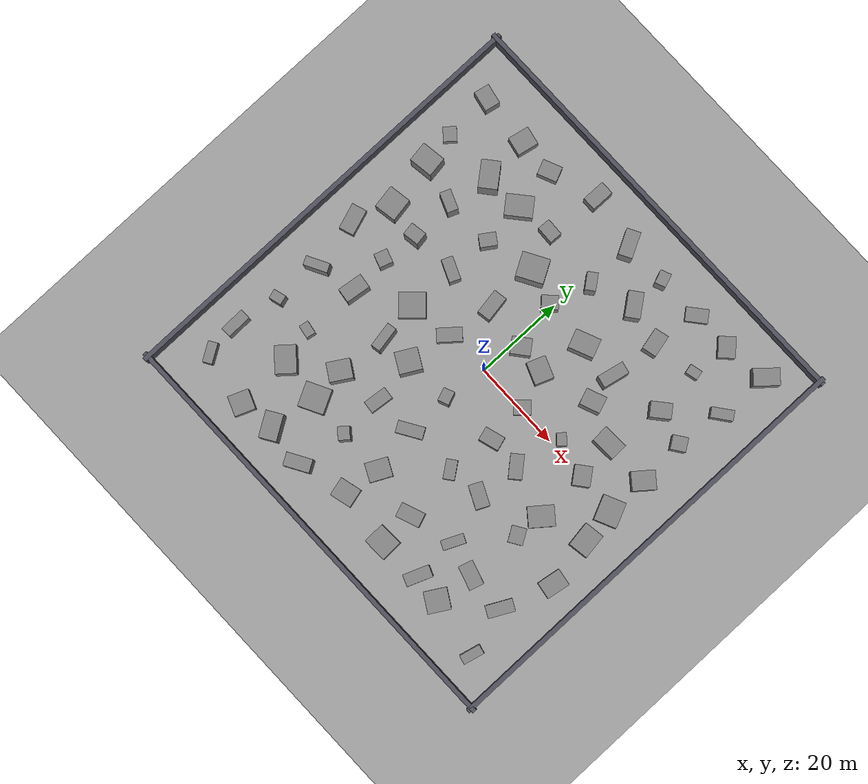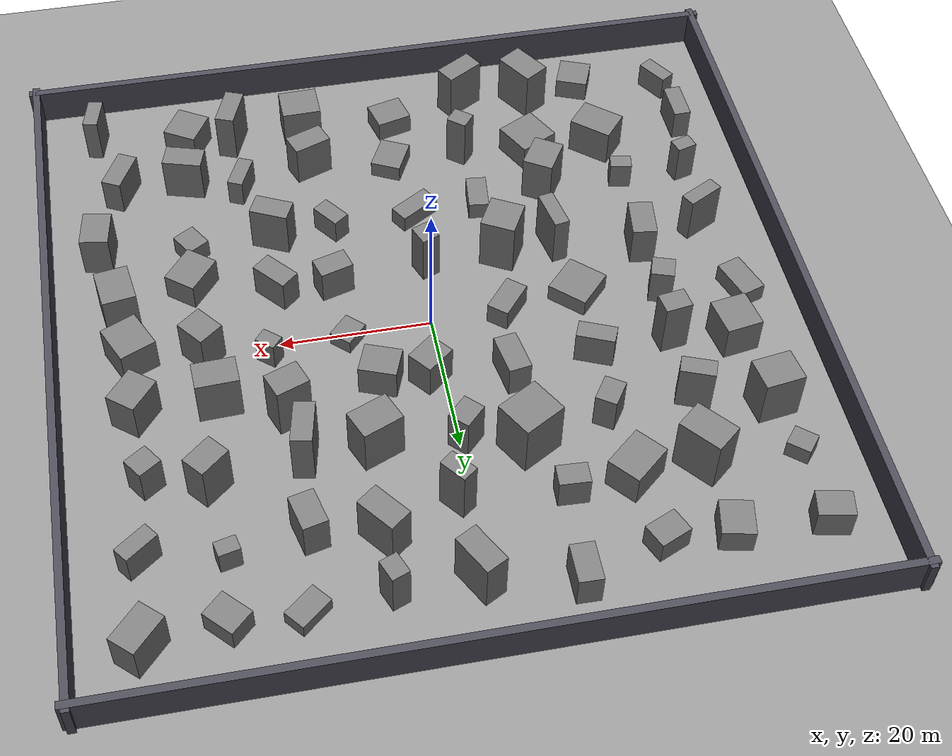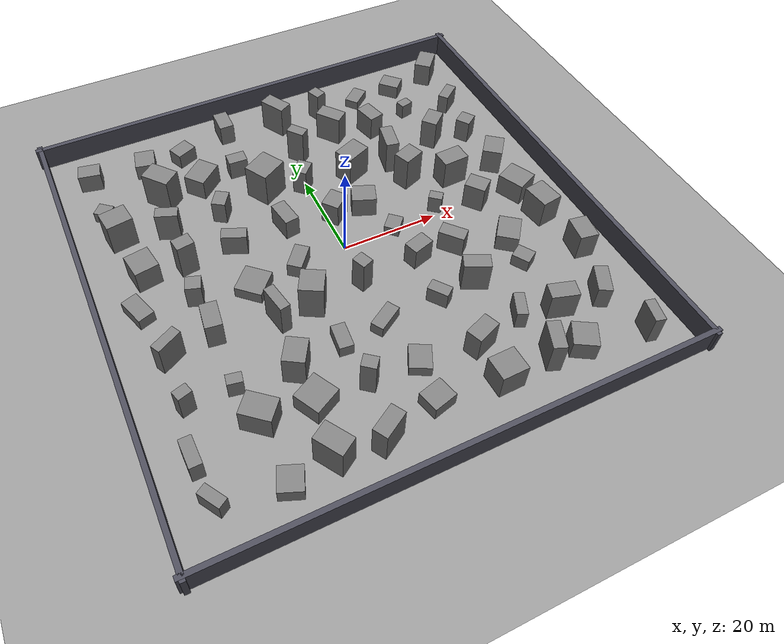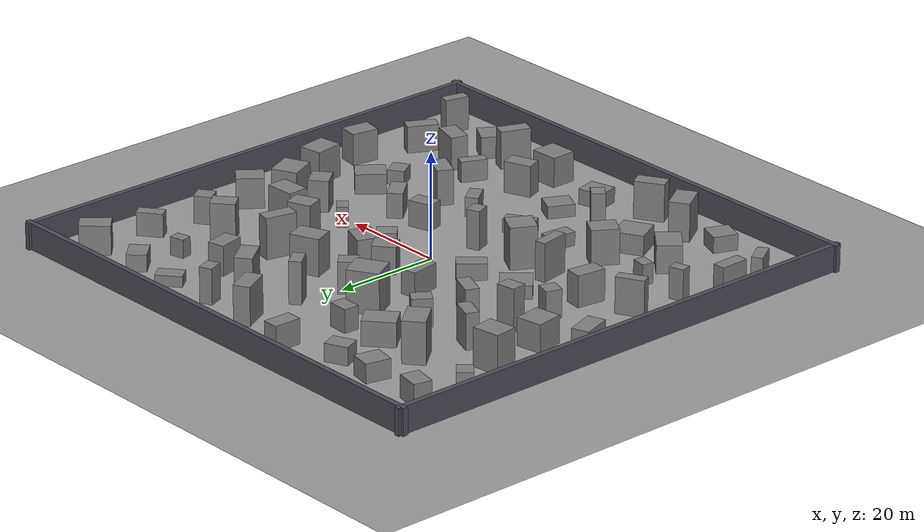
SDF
<?xml version="1.0"?>
<sdf version="1.8">
  <world name="obstacle_world">
    <physics name="default_physics" type="ode">
      <max_step_size>0.001</max_step_size>
      <real_time_factor>1.0</real_time_factor>
      <real_time_update_rate>1000</real_time_update_rate>
    </physics>
    <gravity>0 0 -9.81</gravity>
    <plugin filename="ignition-gazebo-physics-system" name="ignition::gazebo::systems::Physics"/>
    <plugin filename="ignition-gazebo-user-commands-system" name="ignition::gazebo::systems::UserCommands"/>
    <plugin filename="ignition-gazebo-scene-broadcaster-system" name="ignition::gazebo::systems::SceneBroadcaster"/>
    <plugin filename="ignition-gazebo-sensors-system" name="ignition::gazebo::systems::Sensors">
      <render_engine>ogre2</render_engine>
    </plugin>
    <plugin filename="ignition-gazebo-contact-system" name="ignition::gazebo::systems::Contact"/>

    <light type="directional" name="sun">
      <cast_shadows>true</cast_shadows>
      <pose>0 0 20 0 0 0</pose>
      <diffuse>0.9 0.9 0.9 1</diffuse>
      <specular>0.3 0.3 0.3 1</specular>
      <attenuation>
        <range>1000</range>
        <constant>0.9</constant>
        <linear>0.01</linear>
        <quadratic>0.001</quadratic>
      </attenuation>
      <direction>-0.5 0.1 -0.9</direction>
    </light>

    <model name="ground_plane">
      <static>true</static>
      <link name="link">
        <collision name="collision">
          <geometry>
            <plane>
              <normal>0 0 1</normal>
              <size>100 100</size>
            </plane>
          </geometry>
          <surface>
            <friction>
              <ode>
                <mu>2.0</mu>
                <mu2>2.0</mu2>
              </ode>
            </friction>
          </surface>
        </collision>
        <visual name="visual">
          <geometry>
            <plane>
              <normal>0 0 1</normal>
              <size>100 100</size>
            </plane>
          </geometry>
          <material>
            <ambient>0.6 0.6 0.6 1</ambient>
            <diffuse>0.6 0.6 0.6 1</diffuse>
          </material>
        </visual>
      </link>
    </model>

    <!-- Complex obstacles -->

    <model name="building_block_1">
      <pose>-41.10715704740471 -39.05411514334395 1.8250879551073578 0 0 2.125851439739076</pose>
      <static>true</static>
      <link name="link">
        <collision name="collision">
          <geometry><box><size>4.5577071938315346 2.1000430208906677 3.6501759102147155</size></box></geometry>
        </collision>
        <visual name="visual">
          <geometry><box><size>4.5577071938315346 2.1000430208906677 3.6501759102147155</size></box></geometry>
          <material>
            <ambient>0.4 0.4 0.4 1</ambient>
            <diffuse>0.5 0.5 0.5 1</diffuse>
          </material>
        </visual>
      </link>
    </model>

    <model name="building_block_2">
      <pose>-41.88081112224772 -31.125448100785587 2.265765459055811 0 0 1.587573637576713</pose>
      <static>true</static>
      <link name="link">
        <collision name="collision">
          <geometry><box><size>5.568718270819382 2.3477553305176646 4.531530918111622</size></box></geometry>
        </collision>
        <visual name="visual">
          <geometry><box><size>5.568718270819382 2.3477553305176646 4.531530918111622</size></box></geometry>
          <material>
            <ambient>0.4 0.4 0.4 1</ambient>
            <diffuse>0.5 0.5 0.5 1</diffuse>
          </material>
        </visual>
      </link>
    </model>

    <model name="building_block_3">
      <pose>-39.82023407758713 -21.118237511837215 2.94965331333857 0 0 1.8511781458961674</pose>
      <static>true</static>
      <link name="link">
        <collision name="collision">
          <geometry><box><size>2.1061438787354545 2.795350602746594 5.89930662667714</size></box></geometry>
        </collision>
        <visual name="visual">
          <geometry><box><size>2.1061438787354545 2.795350602746594 5.89930662667714</size></box></geometry>
          <material>
            <ambient>0.4 0.4 0.4 1</ambient>
            <diffuse>0.5 0.5 0.5 1</diffuse>
          </material>
        </visual>
      </link>
    </model>

    <model name="building_block_4">
      <pose>-39.207442420047094 -10.638997933928032 3.4174577554984236 0 0 0.4884388486587118</pose>
      <static>true</static>
      <link name="link">
        <collision name="collision">
          <geometry><box><size>5.237721826711306 2.025995038712244 6.834915510996847</size></box></geometry>
        </collision>
        <visual name="visual">
          <geometry><box><size>5.237721826711306 2.025995038712244 6.834915510996847</size></box></geometry>
          <material>
            <ambient>0.4 0.4 0.4 1</ambient>
            <diffuse>0.5 0.5 0.5 1</diffuse>
          </material>
        </visual>
      </link>
    </model>

    <model name="building_block_5">
      <pose>-41.61313449266614 1.3899774653898391 1.2782375301404438 0 0 1.8966053275390884</pose>
      <static>true</static>
      <link name="link">
        <collision name="collision">
          <geometry><box><size>5.828852288827125 3.346378180450507 2.5564750602808877</size></box></geometry>
        </collision>
        <visual name="visual">
          <geometry><box><size>5.828852288827125 3.346378180450507 2.5564750602808877</size></box></geometry>
          <material>
            <ambient>0.4 0.4 0.4 1</ambient>
            <diffuse>0.5 0.5 0.5 1</diffuse>
          </material>
        </visual>
      </link>
    </model>

    <model name="building_block_6">
      <pose>-38.10753694408252 9.514137508833414 2.6086842743641023 0 0 1.7342356431448427</pose>
      <static>true</static>
      <link name="link">
        <collision name="collision">
          <geometry><box><size>5.22851309309752 4.918927146775271 5.217368548728205</size></box></geometry>
        </collision>
        <visual name="visual">
          <geometry><box><size>5.22851309309752 4.918927146775271 5.217368548728205</size></box></geometry>
          <material>
            <ambient>0.4 0.4 0.4 1</ambient>
            <diffuse>0.5 0.5 0.5 1</diffuse>
          </material>
        </visual>
      </link>
    </model>

    <model name="building_block_7">
      <pose>-39.69059141897295 20.818287344859694 3.5851207009323316 0 0 0.14395730125426287</pose>
      <static>true</static>
      <link name="link">
        <collision name="collision">
          <geometry><box><size>5.317618657011979 4.474079009456984 7.170241401864663</size></box></geometry>
        </collision>
        <visual name="visual">
          <geometry><box><size>5.317618657011979 4.474079009456984 7.170241401864663</size></box></geometry>
          <material>
            <ambient>0.4 0.4 0.4 1</ambient>
            <diffuse>0.5 0.5 0.5 1</diffuse>
          </material>
        </visual>
      </link>
    </model>

    <model name="building_block_8">
      <pose>-41.06883645455588 28.404005717638917 1.2393759307708825 0 0 0.8732540741703544</pose>
      <static>true</static>
      <link name="link">
        <collision name="collision">
          <geometry><box><size>2.9115931026061874 3.1575518544084287 2.478751861541765</size></box></geometry>
        </collision>
        <visual name="visual">
          <geometry><box><size>2.9115931026061874 3.1575518544084287 2.478751861541765</size></box></geometry>
          <material>
            <ambient>0.4 0.4 0.4 1</ambient>
            <diffuse>0.5 0.5 0.5 1</diffuse>
          </material>
        </visual>
      </link>
    </model>

    <model name="building_block_9">
      <pose>-41.16197187691405 39.067911288196456 2.110542901350648 0 0 2.9425003872988</pose>
      <static>true</static>
      <link name="link">
        <collision name="collision">
          <geometry><box><size>4.542737777057601 3.459328715880337 4.221085802701296</size></box></geometry>
        </collision>
        <visual name="visual">
          <geometry><box><size>4.542737777057601 3.459328715880337 4.221085802701296</size></box></geometry>
          <material>
            <ambient>0.4 0.4 0.4 1</ambient>
            <diffuse>0.5 0.5 0.5 1</diffuse>
          </material>
        </visual>
      </link>
    </model>

    <model name="building_block_10">
      <pose>-29.083492808198603 -41.346390024952285 1.513415944594291 0 0 1.1920592702816506</pose>
      <static>true</static>
      <link name="link">
        <collision name="collision">
          <geometry><box><size>4.592141540986374 4.436524022667953 3.026831889188582</size></box></geometry>
        </collision>
        <visual name="visual">
          <geometry><box><size>4.592141540986374 4.436524022667953 3.026831889188582</size></box></geometry>
          <material>
            <ambient>0.4 0.4 0.4 1</ambient>
            <diffuse>0.5 0.5 0.5 1</diffuse>
          </material>
        </visual>
      </link>
    </model>

    <model name="building_block_11">
      <pose>-29.2615429960405 -28.628592319240763 2.6708492313239387 0 0 2.437803722122528</pose>
      <static>true</static>
      <link name="link">
        <collision name="collision">
          <geometry><box><size>5.958093402546381 4.559999039416372 5.341698462647877</size></box></geometry>
        </collision>
        <visual name="visual">
          <geometry><box><size>5.958093402546381 4.559999039416372 5.341698462647877</size></box></geometry>
          <material>
            <ambient>0.4 0.4 0.4 1</ambient>
            <diffuse>0.5 0.5 0.5 1</diffuse>
          </material>
        </visual>
      </link>
    </model>

    <model name="building_block_12">
      <pose>-30.92903649609719 -21.156068625654694 1.9463591441772459 0 0 2.9621508675835737</pose>
      <static>true</static>
      <link name="link">
        <collision name="collision">
          <geometry><box><size>2.9161922878564175 2.128400975616151 3.8927182883544917</size></box></geometry>
        </collision>
        <visual name="visual">
          <geometry><box><size>2.9161922878564175 2.128400975616151 3.8927182883544917</size></box></geometry>
          <material>
            <ambient>0.4 0.4 0.4 1</ambient>
            <diffuse>0.5 0.5 0.5 1</diffuse>
          </material>
        </visual>
      </link>
    </model>

    <model name="building_block_13">
      <pose>-30.417472395757343 -8.341809641037827 2.9663159958846403 0 0 1.4414830949033135</pose>
      <static>true</static>
      <link name="link">
        <collision name="collision">
          <geometry><box><size>5.505470505890676 3.2587115231939117 5.932631991769281</size></box></geometry>
        </collision>
        <visual name="visual">
          <geometry><box><size>5.505470505890676 3.2587115231939117 5.932631991769281</size></box></geometry>
          <material>
            <ambient>0.4 0.4 0.4 1</ambient>
            <diffuse>0.5 0.5 0.5 1</diffuse>
          </material>
        </visual>
      </link>
    </model>

    <model name="building_block_14">
      <pose>-30.94903356590826 0.3383439608941621 2.6841044024894525 0 0 2.8205105888371818</pose>
      <static>true</static>
      <link name="link">
        <collision name="collision">
          <geometry><box><size>3.05952066599221 2.986510030775934 5.368208804978905</size></box></geometry>
        </collision>
        <visual name="visual">
          <geometry><box><size>3.05952066599221 2.986510030775934 5.368208804978905</size></box></geometry>
          <material>
            <ambient>0.4 0.4 0.4 1</ambient>
            <diffuse>0.5 0.5 0.5 1</diffuse>
          </material>
        </visual>
      </link>
    </model>

    <model name="building_block_15">
      <pose>-29.96189482529414 8.363637648695175 3.9926128194853305 0 0 0.14801609339680366</pose>
      <static>true</static>
      <link name="link">
        <collision name="collision">
          <geometry><box><size>3.597602020561589 2.8772830366291333 7.985225638970661</size></box></geometry>
        </collision>
        <visual name="visual">
          <geometry><box><size>3.597602020561589 2.8772830366291333 7.985225638970661</size></box></geometry>
          <material>
            <ambient>0.4 0.4 0.4 1</ambient>
            <diffuse>0.5 0.5 0.5 1</diffuse>
          </material>
        </visual>
      </link>
    </model>

    <model name="building_block_16">
      <pose>-30.311360132801262 18.254110824607828 3.3762380930888924 0 0 1.1988569885602853</pose>
      <static>true</static>
      <link name="link">
        <collision name="collision">
          <geometry><box><size>2.4385965214026366 4.50978416681236 6.752476186177785</size></box></geometry>
        </collision>
        <visual name="visual">
          <geometry><box><size>2.4385965214026366 4.50978416681236 6.752476186177785</size></box></geometry>
          <material>
            <ambient>0.4 0.4 0.4 1</ambient>
            <diffuse>0.5 0.5 0.5 1</diffuse>
          </material>
        </visual>
      </link>
    </model>

    <model name="building_block_17">
      <pose>-28.556881191062008 28.04592408777128 3.9132351328408546 0 0 2.2641475955200514</pose>
      <static>true</static>
      <link name="link">
        <collision name="collision">
          <geometry><box><size>5.984485520960387 4.1164573803965485 7.826470265681709</size></box></geometry>
        </collision>
        <visual name="visual">
          <geometry><box><size>5.984485520960387 4.1164573803965485 7.826470265681709</size></box></geometry>
          <material>
            <ambient>0.4 0.4 0.4 1</ambient>
            <diffuse>0.5 0.5 0.5 1</diffuse>
          </material>
        </visual>
      </link>
    </model>

    <model name="building_block_18">
      <pose>-29.436152805680766 38.44620869438351 1.8004755698576282 0 0 1.3658150349769933</pose>
      <static>true</static>
      <link name="link">
        <collision name="collision">
          <geometry><box><size>4.7268414761063 4.147881321635181 3.6009511397152565</size></box></geometry>
        </collision>
        <visual name="visual">
          <geometry><box><size>4.7268414761063 4.147881321635181 3.6009511397152565</size></box></geometry>
          <material>
            <ambient>0.4 0.4 0.4 1</ambient>
            <diffuse>0.5 0.5 0.5 1</diffuse>
          </material>
        </visual>
      </link>
    </model>

    <model name="building_block_19">
      <pose>-20.946443796995638 -39.99765554779881 3.627558821134582 0 0 0.5612348826854078</pose>
      <static>true</static>
      <link name="link">
        <collision name="collision">
          <geometry><box><size>3.8148948253168258 5.81526371008432 7.255117642269164</size></box></geometry>
        </collision>
        <visual name="visual">
          <geometry><box><size>3.8148948253168258 5.81526371008432 7.255117642269164</size></box></geometry>
          <material>
            <ambient>0.4 0.4 0.4 1</ambient>
            <diffuse>0.5 0.5 0.5 1</diffuse>
          </material>
        </visual>
      </link>
    </model>

    <model name="building_block_20">
      <pose>-19.44420202053598 -29.56411915424731 1.8953343743458988 0 0 0.4801445621486778</pose>
      <static>true</static>
      <link name="link">
        <collision name="collision">
          <geometry><box><size>5.650511357379282 5.482074279347067 3.7906687486917976</size></box></geometry>
        </collision>
        <visual name="visual">
          <geometry><box><size>5.650511357379282 5.482074279347067 3.7906687486917976</size></box></geometry>
          <material>
            <ambient>0.4 0.4 0.4 1</ambient>
            <diffuse>0.5 0.5 0.5 1</diffuse>
          </material>
        </visual>
      </link>
    </model>

    <model name="building_block_21">
      <pose>-19.87858531121929 -21.997712415488227 3.3358794358916746 0 0 1.0183362530801805</pose>
      <static>true</static>
      <link name="link">
        <collision name="collision">
          <geometry><box><size>5.050043200300605 4.157516120478503 6.671758871783349</size></box></geometry>
        </collision>
        <visual name="visual">
          <geometry><box><size>5.050043200300605 4.157516120478503 6.671758871783349</size></box></geometry>
          <material>
            <ambient>0.4 0.4 0.4 1</ambient>
            <diffuse>0.5 0.5 0.5 1</diffuse>
          </material>
        </visual>
      </link>
    </model>

    <model name="building_block_22">
      <pose>-18.67333788255528 -10.769943498389354 3.6361656334695525 0 0 0.1819719105414902</pose>
      <static>true</static>
      <link name="link">
        <collision name="collision">
          <geometry><box><size>2.077906969543329 5.716394465058468 7.272331266939105</size></box></geometry>
        </collision>
        <visual name="visual">
          <geometry><box><size>2.077906969543329 5.716394465058468 7.272331266939105</size></box></geometry>
          <material>
            <ambient>0.4 0.4 0.4 1</ambient>
            <diffuse>0.5 0.5 0.5 1</diffuse>
          </material>
        </visual>
      </link>
    </model>

    <model name="building_block_23">
      <pose>-20.056038146733545 -1.7231499261264656 1.2569603562036362 0 0 2.3894317021555933</pose>
      <static>true</static>
      <link name="link">
        <collision name="collision">
          <geometry><box><size>5.512038396816163 5.787797781191976 2.5139207124072724</size></box></geometry>
        </collision>
        <visual name="visual">
          <geometry><box><size>5.512038396816163 5.787797781191976 2.5139207124072724</size></box></geometry>
          <material>
            <ambient>0.4 0.4 0.4 1</ambient>
            <diffuse>0.5 0.5 0.5 1</diffuse>
          </material>
        </visual>
      </link>
    </model>

    <model name="building_block_24">
      <pose>-19.800785626020225 9.060226515760236 2.425847134296194 0 0 2.740748398569336</pose>
      <static>true</static>
      <link name="link">
        <collision name="collision">
          <geometry><box><size>5.063337717227951 2.513565857999051 4.851694268592388</size></box></geometry>
        </collision>
        <visual name="visual">
          <geometry><box><size>5.063337717227951 2.513565857999051 4.851694268592388</size></box></geometry>
          <material>
            <ambient>0.4 0.4 0.4 1</ambient>
            <diffuse>0.5 0.5 0.5 1</diffuse>
          </material>
        </visual>
      </link>
    </model>

    <model name="building_block_25">
      <pose>-19.080275723640096 18.804604253558782 2.617888266338375 0 0 0.9792567291217615</pose>
      <static>true</static>
      <link name="link">
        <collision name="collision">
          <geometry><box><size>3.6925517608035476 2.847192821768328 5.23577653267675</size></box></geometry>
        </collision>
        <visual name="visual">
          <geometry><box><size>3.6925517608035476 2.847192821768328 5.23577653267675</size></box></geometry>
          <material>
            <ambient>0.4 0.4 0.4 1</ambient>
            <diffuse>0.5 0.5 0.5 1</diffuse>
          </material>
        </visual>
      </link>
    </model>

    <model name="building_block_26">
      <pose>-19.92969663585764 28.484016783473063 2.314300251743512 0 0 0.7058866842846375</pose>
      <static>true</static>
      <link name="link">
        <collision name="collision">
          <geometry><box><size>5.980597426643579 4.5995122305578136 4.628600503487024</size></box></geometry>
        </collision>
        <visual name="visual">
          <geometry><box><size>5.980597426643579 4.5995122305578136 4.628600503487024</size></box></geometry>
          <material>
            <ambient>0.4 0.4 0.4 1</ambient>
            <diffuse>0.5 0.5 0.5 1</diffuse>
          </material>
        </visual>
      </link>
    </model>

    <model name="building_block_27">
      <pose>-21.119130462193763 38.28397234403613 1.6903441977897309 0 0 1.9826099402640158</pose>
      <static>true</static>
      <link name="link">
        <collision name="collision">
          <geometry><box><size>3.3523422485898213 4.353234873828933 3.3806883955794618</size></box></geometry>
        </collision>
        <visual name="visual">
          <geometry><box><size>3.3523422485898213 4.353234873828933 3.3806883955794618</size></box></geometry>
          <material>
            <ambient>0.4 0.4 0.4 1</ambient>
            <diffuse>0.5 0.5 0.5 1</diffuse>
          </material>
        </visual>
      </link>
    </model>

    <model name="building_block_28">
      <pose>-11.716570600445387 -41.04798146252402 3.5789062007612396 0 0 2.1015936905177655</pose>
      <static>true</static>
      <link name="link">
        <collision name="collision">
          <geometry><box><size>2.9157671352446175 5.621680052024512 7.157812401522479</size></box></geometry>
        </collision>
        <visual name="visual">
          <geometry><box><size>2.9157671352446175 5.621680052024512 7.157812401522479</size></box></geometry>
          <material>
            <ambient>0.4 0.4 0.4 1</ambient>
            <diffuse>0.5 0.5 0.5 1</diffuse>
          </material>
        </visual>
      </link>
    </model>

    <model name="building_block_29">
      <pose>-9.715827626698863 -30.109315894752825 3.806542721742013 0 0 2.4648819214094018</pose>
      <static>true</static>
      <link name="link">
        <collision name="collision">
          <geometry><box><size>2.8569472294817544 2.5292473949001 7.613085443484026</size></box></geometry>
        </collision>
        <visual name="visual">
          <geometry><box><size>2.8569472294817544 2.5292473949001 7.613085443484026</size></box></geometry>
          <material>
            <ambient>0.4 0.4 0.4 1</ambient>
            <diffuse>0.5 0.5 0.5 1</diffuse>
          </material>
        </visual>
      </link>
    </model>

    <model name="building_block_30">
      <pose>-10.27579527037449 -20.305685507920316 1.2907924426864699 0 0 1.4671579946372144</pose>
      <static>true</static>
      <link name="link">
        <collision name="collision">
          <geometry><box><size>5.229987991066574 2.761639657447511 2.5815848853729397</size></box></geometry>
        </collision>
        <visual name="visual">
          <geometry><box><size>5.229987991066574 2.761639657447511 2.5815848853729397</size></box></geometry>
          <material>
            <ambient>0.4 0.4 0.4 1</ambient>
            <diffuse>0.5 0.5 0.5 1</diffuse>
          </material>
        </visual>
      </link>
    </model>

    <model name="building_block_31">
      <pose>-11.606328515392164 -10.389514871590926 3.9524956340978985 0 0 1.0659191348482768</pose>
      <static>true</static>
      <link name="link">
        <collision name="collision">
          <geometry><box><size>4.916303397839402 4.693458189173207 7.904991268195797</size></box></geometry>
        </collision>
        <visual name="visual">
          <geometry><box><size>4.916303397839402 4.693458189173207 7.904991268195797</size></box></geometry>
          <material>
            <ambient>0.4 0.4 0.4 1</ambient>
            <diffuse>0.5 0.5 0.5 1</diffuse>
          </material>
        </visual>
      </link>
    </model>

    <model name="building_block_32">
      <pose>-10.205545808667473 -0.31247344066238325 1.5706267253224344 0 0 0.8750495719711935</pose>
      <static>true</static>
      <link name="link">
        <collision name="collision">
          <geometry><box><size>5.446690145411164 2.9946253356811425 3.141253450644869</size></box></geometry>
        </collision>
        <visual name="visual">
          <geometry><box><size>5.446690145411164 2.9946253356811425 3.141253450644869</size></box></geometry>
          <material>
            <ambient>0.4 0.4 0.4 1</ambient>
            <diffuse>0.5 0.5 0.5 1</diffuse>
          </material>
        </visual>
      </link>
    </model>

    <model name="building_block_33">
      <pose>-8.554603580952678 10.201301249799393 2.3293922351603706 0 0 0.1589232372024144</pose>
      <static>true</static>
      <link name="link">
        <collision name="collision">
          <geometry><box><size>2.999225791528402 5.693062397104051 4.658784470320741</size></box></geometry>
        </collision>
        <visual name="visual">
          <geometry><box><size>2.999225791528402 5.693062397104051 4.658784470320741</size></box></geometry>
          <material>
            <ambient>0.4 0.4 0.4 1</ambient>
            <diffuse>0.5 0.5 0.5 1</diffuse>
          </material>
        </visual>
      </link>
    </model>

    <model name="building_block_34">
      <pose>-8.29453206796749 21.394782937657222 3.9069887718542535 0 0 0.5224663539621959</pose>
      <static>true</static>
      <link name="link">
        <collision name="collision">
          <geometry><box><size>5.997129873650906 5.344110340319808 7.813977543708507</size></box></geometry>
        </collision>
        <visual name="visual">
          <geometry><box><size>5.997129873650906 5.344110340319808 7.813977543708507</size></box></geometry>
          <material>
            <ambient>0.4 0.4 0.4 1</ambient>
            <diffuse>0.5 0.5 0.5 1</diffuse>
          </material>
        </visual>
      </link>
    </model>

    <model name="building_block_35">
      <pose>-11.765458400111285 29.515892475907663 2.2031208776483577 0 0 3.0953477327340093</pose>
      <static>true</static>
      <link name="link">
        <collision name="collision">
          <geometry><box><size>3.942564501802874 2.8549891967967267 4.4062417552967155</size></box></geometry>
        </collision>
        <visual name="visual">
          <geometry><box><size>3.942564501802874 2.8549891967967267 4.4062417552967155</size></box></geometry>
          <material>
            <ambient>0.4 0.4 0.4 1</ambient>
            <diffuse>0.5 0.5 0.5 1</diffuse>
          </material>
        </visual>
      </link>
    </model>

    <model name="building_block_36">
      <pose>-10.307970056039348 41.82927056343869 2.3650251020174298 0 0 3.1271203790413606</pose>
      <static>true</static>
      <link name="link">
        <collision name="collision">
          <geometry><box><size>3.060812232688608 5.136282407794278 4.7300502040348595</size></box></geometry>
        </collision>
        <visual name="visual">
          <geometry><box><size>3.060812232688608 5.136282407794278 4.7300502040348595</size></box></geometry>
          <material>
            <ambient>0.4 0.4 0.4 1</ambient>
            <diffuse>0.5 0.5 0.5 1</diffuse>
          </material>
        </visual>
      </link>
    </model>

    <model name="building_block_37">
      <pose>-0.8131686980217432 -38.12516254012336 1.4643904758221924 0 0 1.819494883599269</pose>
      <static>true</static>
      <link name="link">
        <collision name="collision">
          <geometry><box><size>4.223073293622473 4.873633101185304 2.928780951644385</size></box></geometry>
        </collision>
        <visual name="visual">
          <geometry><box><size>4.223073293622473 4.873633101185304 2.928780951644385</size></box></geometry>
          <material>
            <ambient>0.4 0.4 0.4 1</ambient>
            <diffuse>0.5 0.5 0.5 1</diffuse>
          </material>
        </visual>
      </link>
    </model>

    <model name="building_block_38">
      <pose>0.33671037783588487 -29.988598468321946 1.1714958187224491 0 0 2.6788195408696884</pose>
      <static>true</static>
      <link name="link">
        <collision name="collision">
          <geometry><box><size>4.1687808054970965 4.991902241516256 2.3429916374448982</size></box></geometry>
        </collision>
        <visual name="visual">
          <geometry><box><size>4.1687808054970965 4.991902241516256 2.3429916374448982</size></box></geometry>
          <material>
            <ambient>0.4 0.4 0.4 1</ambient>
            <diffuse>0.5 0.5 0.5 1</diffuse>
          </material>
        </visual>
      </link>
    </model>

    <model name="building_block_39">
      <pose>-1.2567001560771072 -19.61985957419989 1.2403343957217605 0 0 2.1211802371472492</pose>
      <static>true</static>
      <link name="link">
        <collision name="collision">
          <geometry><box><size>2.629730911757933 5.843115613097801 2.480668791443521</size></box></geometry>
        </collision>
        <visual name="visual">
          <geometry><box><size>2.629730911757933 5.843115613097801 2.480668791443521</size></box></geometry>
          <material>
            <ambient>0.4 0.4 0.4 1</ambient>
            <diffuse>0.5 0.5 0.5 1</diffuse>
          </material>
        </visual>
      </link>
    </model>

    <model name="building_block_40">
      <pose>-1.0151386088455006 -9.621923385866236 3.6708619423883126 0 0 1.945787014708302</pose>
      <static>true</static>
      <link name="link">
        <collision name="collision">
          <geometry><box><size>2.940815580003725 2.4795464557884968 7.341723884776625</size></box></geometry>
        </collision>
        <visual name="visual">
          <geometry><box><size>2.940815580003725 2.4795464557884968 7.341723884776625</size></box></geometry>
          <material>
            <ambient>0.4 0.4 0.4 1</ambient>
            <diffuse>0.5 0.5 0.5 1</diffuse>
          </material>
        </visual>
      </link>
    </model>

    <model name="building_block_41">
      <pose>1.738825030945709 8.817036797694145 2.5683481465958766 0 0 2.2499165421799465</pose>
      <static>true</static>
      <link name="link">
        <collision name="collision">
          <geometry><box><size>3.67689966134349 4.334689157164899 5.136696293191753</size></box></geometry>
        </collision>
        <visual name="visual">
          <geometry><box><size>3.67689966134349 4.334689157164899 5.136696293191753</size></box></geometry>
          <material>
            <ambient>0.4 0.4 0.4 1</ambient>
            <diffuse>0.5 0.5 0.5 1</diffuse>
          </material>
        </visual>
      </link>
    </model>

    <model name="building_block_42">
      <pose>-0.8000116808049511 19.264708785087414 3.015070668879914 0 0 2.3619823029198446</pose>
      <static>true</static>
      <link name="link">
        <collision name="collision">
          <geometry><box><size>2.954743810463384 3.583143387165018 6.030141337759828</size></box></geometry>
        </collision>
        <visual name="visual">
          <geometry><box><size>2.954743810463384 3.583143387165018 6.030141337759828</size></box></geometry>
          <material>
            <ambient>0.4 0.4 0.4 1</ambient>
            <diffuse>0.5 0.5 0.5 1</diffuse>
          </material>
        </visual>
      </link>
    </model>

    <model name="building_block_43">
      <pose>1.9843857914203777 28.29304288439853 3.995363322563327 0 0 0.6696242719869074</pose>
      <static>true</static>
      <link name="link">
        <collision name="collision">
          <geometry><box><size>2.2901724579726292 3.8331420904743445 7.990726645126654</size></box></geometry>
        </collision>
        <visual name="visual">
          <geometry><box><size>2.2901724579726292 3.8331420904743445 7.990726645126654</size></box></geometry>
          <material>
            <ambient>0.4 0.4 0.4 1</ambient>
            <diffuse>0.5 0.5 0.5 1</diffuse>
          </material>
        </visual>
      </link>
    </model>

    <model name="building_block_44">
      <pose>1.517080969938171 39.47810835495554 3.642592521059319 0 0 0.49556167385024424</pose>
      <static>true</static>
      <link name="link">
        <collision name="collision">
          <geometry><box><size>3.0608016590016054 5.733037511974836 7.285185042118638</size></box></geometry>
        </collision>
        <visual name="visual">
          <geometry><box><size>3.0608016590016054 5.733037511974836 7.285185042118638</size></box></geometry>
          <material>
            <ambient>0.4 0.4 0.4 1</ambient>
            <diffuse>0.5 0.5 0.5 1</diffuse>
          </material>
        </visual>
      </link>
    </model>

    <model name="building_block_45">
      <pose>11.948932254526017 -39.38409472915707 2.8350332971778505 0 0 0.024576291118504196</pose>
      <static>true</static>
      <link name="link">
        <collision name="collision">
          <geometry><box><size>5.334979818559228 4.814159700349483 5.670066594355701</size></box></geometry>
        </collision>
        <visual name="visual">
          <geometry><box><size>5.334979818559228 4.814159700349483 5.670066594355701</size></box></geometry>
          <material>
            <ambient>0.4 0.4 0.4 1</ambient>
            <diffuse>0.5 0.5 0.5 1</diffuse>
          </material>
        </visual>
      </link>
    </model>

    <model name="building_block_46">
      <pose>11.755720015708416 -31.46283554242653 2.990166144898232 0 0 0.3626191681216096</pose>
      <static>true</static>
      <link name="link">
        <collision name="collision">
          <geometry><box><size>5.268416540461846 3.1975150087999116 5.980332289796464</size></box></geometry>
        </collision>
        <visual name="visual">
          <geometry><box><size>5.268416540461846 3.1975150087999116 5.980332289796464</size></box></geometry>
          <material>
            <ambient>0.4 0.4 0.4 1</ambient>
            <diffuse>0.5 0.5 0.5 1</diffuse>
          </material>
        </visual>
      </link>
    </model>

    <model name="building_block_47">
      <pose>10.419319308120896 -19.12955125144481 1.8170446369444488 0 0 0.6396009566766934</pose>
      <static>true</static>
      <link name="link">
        <collision name="collision">
          <geometry><box><size>2.4281439108376706 4.212894563539264 3.6340892738888977</size></box></geometry>
        </collision>
        <visual name="visual">
          <geometry><box><size>2.4281439108376706 4.212894563539264 3.6340892738888977</size></box></geometry>
          <material>
            <ambient>0.4 0.4 0.4 1</ambient>
            <diffuse>0.5 0.5 0.5 1</diffuse>
          </material>
        </visual>
      </link>
    </model>

    <model name="building_block_48">
      <pose>11.621345964317292 -8.615585146820578 2.4655955564481298 0 0 0.28995563631955207</pose>
      <static>true</static>
      <link name="link">
        <collision name="collision">
          <geometry><box><size>4.536951835540319 3.0559356065216376 4.9311911128962596</size></box></geometry>
        </collision>
        <visual name="visual">
          <geometry><box><size>4.536951835540319 3.0559356065216376 4.9311911128962596</size></box></geometry>
          <material>
            <ambient>0.4 0.4 0.4 1</ambient>
            <diffuse>0.5 0.5 0.5 1</diffuse>
          </material>
        </visual>
      </link>
    </model>

    <model name="building_block_49">
      <pose>11.08447689207851 0.5484535092055185 1.010637067263347 0 0 0.8229324569375049</pose>
      <static>true</static>
      <link name="link">
        <collision name="collision">
          <geometry><box><size>3.6943030902549054 3.1067208958890067 2.021274134526694</size></box></geometry>
        </collision>
        <visual name="visual">
          <geometry><box><size>3.6943030902549054 3.1067208958890067 2.021274134526694</size></box></geometry>
          <material>
            <ambient>0.4 0.4 0.4 1</ambient>
            <diffuse>0.5 0.5 0.5 1</diffuse>
          </material>
        </visual>
      </link>
    </model>

    <model name="building_block_50">
      <pose>8.03867879843336 8.300975440295069 2.283060756942038 0 0 2.774278734552399</pose>
      <static>true</static>
      <link name="link">
        <collision name="collision">
          <geometry><box><size>4.964923633391724 4.206721684505565 4.566121513884076</size></box></geometry>
        </collision>
        <visual name="visual">
          <geometry><box><size>4.964923633391724 4.206721684505565 4.566121513884076</size></box></geometry>
          <material>
            <ambient>0.4 0.4 0.4 1</ambient>
            <diffuse>0.5 0.5 0.5 1</diffuse>
          </material>
        </visual>
      </link>
    </model>

    <model name="building_block_51">
      <pose>10.330038265959177 18.59237514226993 3.50378505965805 0 0 0.4003700988248389</pose>
      <static>true</static>
      <link name="link">
        <collision name="collision">
          <geometry><box><size>5.615714286239573 4.18236115682209 7.0075701193161</size></box></geometry>
        </collision>
        <visual name="visual">
          <geometry><box><size>5.615714286239573 4.18236115682209 7.0075701193161</size></box></geometry>
          <material>
            <ambient>0.4 0.4 0.4 1</ambient>
            <diffuse>0.5 0.5 0.5 1</diffuse>
          </material>
        </visual>
      </link>
    </model>

    <model name="building_block_52">
      <pose>11.442810328003612 31.595698546105897 3.3883669146641253 0 0 0.6599554451943374</pose>
      <static>true</static>
      <link name="link">
        <collision name="collision">
          <geometry><box><size>3.2330333997205347 5.59592595497036 6.776733829328251</size></box></geometry>
        </collision>
        <visual name="visual">
          <geometry><box><size>3.2330333997205347 5.59592595497036 6.776733829328251</size></box></geometry>
          <material>
            <ambient>0.4 0.4 0.4 1</ambient>
            <diffuse>0.5 0.5 0.5 1</diffuse>
          </material>
        </visual>
      </link>
    </model>

    <model name="building_block_53">
      <pose>11.536538805804035 39.625509559328464 3.3403487256143283 0 0 1.9498081341384643</pose>
      <static>true</static>
      <link name="link">
        <collision name="collision">
          <geometry><box><size>2.9981189568916977 2.4111744866871425 6.6806974512286565</size></box></geometry>
        </collision>
        <visual name="visual">
          <geometry><box><size>2.9981189568916977 2.4111744866871425 6.6806974512286565</size></box></geometry>
          <material>
            <ambient>0.4 0.4 0.4 1</ambient>
            <diffuse>0.5 0.5 0.5 1</diffuse>
          </material>
        </visual>
      </link>
    </model>

    <model name="building_block_54">
      <pose>21.904824131723853 -38.756913120238416 3.593817088659892 0 0 2.768969006949834</pose>
      <static>true</static>
      <link name="link">
        <collision name="collision">
          <geometry><box><size>2.6182133533288185 5.719524062774697 7.187634177319784</size></box></geometry>
        </collision>
        <visual name="visual">
          <geometry><box><size>2.6182133533288185 5.719524062774697 7.187634177319784</size></box></geometry>
          <material>
            <ambient>0.4 0.4 0.4 1</ambient>
            <diffuse>0.5 0.5 0.5 1</diffuse>
          </material>
        </visual>
      </link>
    </model>

    <model name="building_block_55">
      <pose>21.7232635441933 -28.791059444251445 1.996556403839286 0 0 2.7144571451409405</pose>
      <static>true</static>
      <link name="link">
        <collision name="collision">
          <geometry><box><size>2.099145447592755 4.946257887020328 3.993112807678572</size></box></geometry>
        </collision>
        <visual name="visual">
          <geometry><box><size>2.099145447592755 4.946257887020328 3.993112807678572</size></box></geometry>
          <material>
            <ambient>0.4 0.4 0.4 1</ambient>
            <diffuse>0.5 0.5 0.5 1</diffuse>
          </material>
        </visual>
      </link>
    </model>

    <model name="building_block_56">
      <pose>18.432382505611827 -18.51133286837564 3.362123527406413 0 0 2.697270699077641</pose>
      <static>true</static>
      <link name="link">
        <collision name="collision">
          <geometry><box><size>5.2429972662975555 3.067222838377888 6.724247054812826</size></box></geometry>
        </collision>
        <visual name="visual">
          <geometry><box><size>5.2429972662975555 3.067222838377888 6.724247054812826</size></box></geometry>
          <material>
            <ambient>0.4 0.4 0.4 1</ambient>
            <diffuse>0.5 0.5 0.5 1</diffuse>
          </material>
        </visual>
      </link>
    </model>

    <model name="building_block_57">
      <pose>19.220763469354402 -8.818618003388552 2.380909704036826 0 0 0.7149912236915106</pose>
      <static>true</static>
      <link name="link">
        <collision name="collision">
          <geometry><box><size>2.8897348701826577 5.266346422387716 4.761819408073652</size></box></geometry>
        </collision>
        <visual name="visual">
          <geometry><box><size>2.8897348701826577 5.266346422387716 4.761819408073652</size></box></geometry>
          <material>
            <ambient>0.4 0.4 0.4 1</ambient>
            <diffuse>0.5 0.5 0.5 1</diffuse>
          </material>
        </visual>
      </link>
    </model>

    <model name="building_block_58">
      <pose>21.457411768121144 1.8675564161934446 1.9847858535931195 0 0 0.8768711646357591</pose>
      <static>true</static>
      <link name="link">
        <collision name="collision">
          <geometry><box><size>2.094657738805806 2.7725191533108346 3.969571707186239</size></box></geometry>
        </collision>
        <visual name="visual">
          <geometry><box><size>2.094657738805806 2.7725191533108346 3.969571707186239</size></box></geometry>
          <material>
            <ambient>0.4 0.4 0.4 1</ambient>
            <diffuse>0.5 0.5 0.5 1</diffuse>
          </material>
        </visual>
      </link>
    </model>

    <model name="building_block_59">
      <pose>20.144862929914886 11.756948561298863 3.94344906159478 0 0 0.3623461134412598</pose>
      <static>true</static>
      <link name="link">
        <collision name="collision">
          <geometry><box><size>4.565926954430511 3.5987135374402435 7.88689812318956</size></box></geometry>
        </collision>
        <visual name="visual">
          <geometry><box><size>4.565926954430511 3.5987135374402435 7.88689812318956</size></box></geometry>
          <material>
            <ambient>0.4 0.4 0.4 1</ambient>
            <diffuse>0.5 0.5 0.5 1</diffuse>
          </material>
        </visual>
      </link>
    </model>

    <model name="building_block_60">
      <pose>19.061865450091876 18.433610188858843 3.8876029472846665 0 0 1.3651820475308303</pose>
      <static>true</static>
      <link name="link">
        <collision name="collision">
          <geometry><box><size>5.881602444088912 2.7142712646898546 7.775205894569333</size></box></geometry>
        </collision>
        <visual name="visual">
          <geometry><box><size>5.881602444088912 2.7142712646898546 7.775205894569333</size></box></geometry>
          <material>
            <ambient>0.4 0.4 0.4 1</ambient>
            <diffuse>0.5 0.5 0.5 1</diffuse>
          </material>
        </visual>
      </link>
    </model>

    <model name="building_block_61">
      <pose>20.045692238677912 29.540781733378907 2.81862655991843 0 0 1.8113513386445674</pose>
      <static>true</static>
      <link name="link">
        <collision name="collision">
          <geometry><box><size>4.914180242610817 3.254709256779965 5.63725311983686</size></box></geometry>
        </collision>
        <visual name="visual">
          <geometry><box><size>4.914180242610817 3.254709256779965 5.63725311983686</size></box></geometry>
          <material>
            <ambient>0.4 0.4 0.4 1</ambient>
            <diffuse>0.5 0.5 0.5 1</diffuse>
          </material>
        </visual>
      </link>
    </model>

    <model name="building_block_62">
      <pose>21.702300661996333 40.15380798837117 1.0050738346558883 0 0 2.2600893423135324</pose>
      <static>true</static>
      <link name="link">
        <collision name="collision">
          <geometry><box><size>3.0188900245543278 4.835141135336682 2.0101476693117766</size></box></geometry>
        </collision>
        <visual name="visual">
          <geometry><box><size>3.0188900245543278 4.835141135336682 2.0101476693117766</size></box></geometry>
          <material>
            <ambient>0.4 0.4 0.4 1</ambient>
            <diffuse>0.5 0.5 0.5 1</diffuse>
          </material>
        </visual>
      </link>
    </model>

    <model name="building_block_63">
      <pose>28.27989524450524 -39.34304926035491 2.0926644153437923 0 0 1.0373234132278166</pose>
      <static>true</static>
      <link name="link">
        <collision name="collision">
          <geometry><box><size>4.967800311357906 4.682514017731998 4.185328830687585</size></box></geometry>
        </collision>
        <visual name="visual">
          <geometry><box><size>4.967800311357906 4.682514017731998 4.185328830687585</size></box></geometry>
          <material>
            <ambient>0.4 0.4 0.4 1</ambient>
            <diffuse>0.5 0.5 0.5 1</diffuse>
          </material>
        </visual>
      </link>
    </model>

    <model name="building_block_64">
      <pose>29.201289072845057 -30.762861351165387 3.1592627890418505 0 0 1.2829663224272698</pose>
      <static>true</static>
      <link name="link">
        <collision name="collision">
          <geometry><box><size>3.2556625802334387 5.392061118025342 6.318525578083701</size></box></geometry>
        </collision>
        <visual name="visual">
          <geometry><box><size>3.2556625802334387 5.392061118025342 6.318525578083701</size></box></geometry>
          <material>
            <ambient>0.4 0.4 0.4 1</ambient>
            <diffuse>0.5 0.5 0.5 1</diffuse>
          </material>
        </visual>
      </link>
    </model>

    <model name="building_block_65">
      <pose>29.681785335091632 -18.238545317079268 1.3818633971774597 0 0 2.127794325074291</pose>
      <static>true</static>
      <link name="link">
        <collision name="collision">
          <geometry><box><size>3.6096015482308985 3.182620810103788 2.7637267943549193</size></box></geometry>
        </collision>
        <visual name="visual">
          <geometry><box><size>3.6096015482308985 3.182620810103788 2.7637267943549193</size></box></geometry>
          <material>
            <ambient>0.4 0.4 0.4 1</ambient>
            <diffuse>0.5 0.5 0.5 1</diffuse>
          </material>
        </visual>
      </link>
    </model>

    <model name="building_block_66">
      <pose>30.191748852542794 -11.998376241210849 1.9028496236966959 0 0 0.9013394415437348</pose>
      <static>true</static>
      <link name="link">
        <collision name="collision">
          <geometry><box><size>5.61122218293033 4.4620596638055225 3.8056992473933917</size></box></geometry>
        </collision>
        <visual name="visual">
          <geometry><box><size>5.61122218293033 4.4620596638055225 3.8056992473933917</size></box></geometry>
          <material>
            <ambient>0.4 0.4 0.4 1</ambient>
            <diffuse>0.5 0.5 0.5 1</diffuse>
          </material>
        </visual>
      </link>
    </model>

    <model name="building_block_67">
      <pose>29.859952760988058 -0.2313608027807703 2.9641168711092147 0 0 0.6713429512072586</pose>
      <static>true</static>
      <link name="link">
        <collision name="collision">
          <geometry><box><size>3.7195525999593384 4.319939124782728 5.9282337422184295</size></box></geometry>
        </collision>
        <visual name="visual">
          <geometry><box><size>3.7195525999593384 4.319939124782728 5.9282337422184295</size></box></geometry>
          <material>
            <ambient>0.4 0.4 0.4 1</ambient>
            <diffuse>0.5 0.5 0.5 1</diffuse>
          </material>
        </visual>
      </link>
    </model>

    <model name="building_block_68">
      <pose>28.67876558479222 8.339182146900487 3.3880742803803408 0 0 1.6192924891486526</pose>
      <static>true</static>
      <link name="link">
        <collision name="collision">
          <geometry><box><size>3.892744743637305 5.604723303313017 6.7761485607606815</size></box></geometry>
        </collision>
        <visual name="visual">
          <geometry><box><size>3.892744743637305 5.604723303313017 6.7761485607606815</size></box></geometry>
          <material>
            <ambient>0.4 0.4 0.4 1</ambient>
            <diffuse>0.5 0.5 0.5 1</diffuse>
          </material>
        </visual>
      </link>
    </model>

    <model name="building_block_69">
      <pose>31.004552550162927 20.691182682228668 3.4552703936099927 0 0 0.7057086522304812</pose>
      <static>true</static>
      <link name="link">
        <collision name="collision">
          <geometry><box><size>4.5317634230631825 3.3407530216392036 6.910540787219985</size></box></geometry>
        </collision>
        <visual name="visual">
          <geometry><box><size>4.5317634230631825 3.3407530216392036 6.910540787219985</size></box></geometry>
          <material>
            <ambient>0.4 0.4 0.4 1</ambient>
            <diffuse>0.5 0.5 0.5 1</diffuse>
          </material>
        </visual>
      </link>
    </model>

    <model name="building_block_70">
      <pose>29.900545376875222 31.39895077849893 1.7345276322350505 0 0 0.22878988198332387</pose>
      <static>true</static>
      <link name="link">
        <collision name="collision">
          <geometry><box><size>2.7965197309063066 2.0977015509073054 3.469055264470101</size></box></geometry>
        </collision>
        <visual name="visual">
          <geometry><box><size>2.7965197309063066 2.0977015509073054 3.469055264470101</size></box></geometry>
          <material>
            <ambient>0.4 0.4 0.4 1</ambient>
            <diffuse>0.5 0.5 0.5 1</diffuse>
          </material>
        </visual>
      </link>
    </model>

    <model name="building_block_71">
      <pose>30.78541700196202 39.97750867604175 1.583305710219128 0 0 0.7664771169356657</pose>
      <static>true</static>
      <link name="link">
        <collision name="collision">
          <geometry><box><size>3.6577640439908774 4.519061522950855 3.166611420438256</size></box></geometry>
        </collision>
        <visual name="visual">
          <geometry><box><size>3.6577640439908774 4.519061522950855 3.166611420438256</size></box></geometry>
          <material>
            <ambient>0.4 0.4 0.4 1</ambient>
            <diffuse>0.5 0.5 0.5 1</diffuse>
          </material>
        </visual>
      </link>
    </model>

    <model name="building_block_72">
      <pose>41.0801847542961 -41.57365081374584 3.2528934298554186 0 0 1.3355967682710994</pose>
      <static>true</static>
      <link name="link">
        <collision name="collision">
          <geometry><box><size>4.624232044447137 2.022179272552127 6.505786859710837</size></box></geometry>
        </collision>
        <visual name="visual">
          <geometry><box><size>4.624232044447137 2.022179272552127 6.505786859710837</size></box></geometry>
          <material>
            <ambient>0.4 0.4 0.4 1</ambient>
            <diffuse>0.5 0.5 0.5 1</diffuse>
          </material>
        </visual>
      </link>
    </model>

    <model name="building_block_73">
      <pose>38.20087354056256 -31.003206881360114 2.5538732513312223 0 0 2.665048635205239</pose>
      <static>true</static>
      <link name="link">
        <collision name="collision">
          <geometry><box><size>2.7035467268261266 5.831864169118159 5.107746502662445</size></box></geometry>
        </collision>
        <visual name="visual">
          <geometry><box><size>2.7035467268261266 5.831864169118159 5.107746502662445</size></box></geometry>
          <material>
            <ambient>0.4 0.4 0.4 1</ambient>
            <diffuse>0.5 0.5 0.5 1</diffuse>
          </material>
        </visual>
      </link>
    </model>

    <model name="building_block_74">
      <pose>41.951569812265795 -19.61819072612232 3.0027331977590594 0 0 2.9845494299241744</pose>
      <static>true</static>
      <link name="link">
        <collision name="collision">
          <geometry><box><size>3.82584730188069 5.205666406889058 6.005466395518119</size></box></geometry>
        </collision>
        <visual name="visual">
          <geometry><box><size>3.82584730188069 5.205666406889058 6.005466395518119</size></box></geometry>
          <material>
            <ambient>0.4 0.4 0.4 1</ambient>
            <diffuse>0.5 0.5 0.5 1</diffuse>
          </material>
        </visual>
      </link>
    </model>

    <model name="building_block_75">
      <pose>40.019112659297605 -8.677723321114339 3.1578218838279013 0 0 1.7211397328439175</pose>
      <static>true</static>
      <link name="link">
        <collision name="collision">
          <geometry><box><size>5.5657037032417485 4.450609291047051 6.315643767655803</size></box></geometry>
        </collision>
        <visual name="visual">
          <geometry><box><size>5.5657037032417485 4.450609291047051 6.315643767655803</size></box></geometry>
          <material>
            <ambient>0.4 0.4 0.4 1</ambient>
            <diffuse>0.5 0.5 0.5 1</diffuse>
          </material>
        </visual>
      </link>
    </model>

    <model name="building_block_76">
      <pose>39.036766193860075 -1.0110410499613618 2.4240233104691598 0 0 2.0032134036322953</pose>
      <static>true</static>
      <link name="link">
        <collision name="collision">
          <geometry><box><size>5.588832412933049 4.97462176863834 4.8480466209383195</size></box></geometry>
        </collision>
        <visual name="visual">
          <geometry><box><size>5.588832412933049 4.97462176863834 4.8480466209383195</size></box></geometry>
          <material>
            <ambient>0.4 0.4 0.4 1</ambient>
            <diffuse>0.5 0.5 0.5 1</diffuse>
          </material>
        </visual>
      </link>
    </model>

    <model name="building_block_77">
      <pose>39.09838978767015 8.309933415458943 2.8802453109453436 0 0 0.8976149859365936</pose>
      <static>true</static>
      <link name="link">
        <collision name="collision">
          <geometry><box><size>5.063254737188662 4.085199251311929 5.760490621890687</size></box></geometry>
        </collision>
        <visual name="visual">
          <geometry><box><size>5.063254737188662 4.085199251311929 5.760490621890687</size></box></geometry>
          <material>
            <ambient>0.4 0.4 0.4 1</ambient>
            <diffuse>0.5 0.5 0.5 1</diffuse>
          </material>
        </visual>
      </link>
    </model>

    <model name="building_block_78">
      <pose>38.553496246064626 18.925045918912748 2.620456667555369 0 0 2.180043335337473</pose>
      <static>true</static>
      <link name="link">
        <collision name="collision">
          <geometry><box><size>3.0868604283287384 3.278838273675049 5.240913335110738</size></box></geometry>
        </collision>
        <visual name="visual">
          <geometry><box><size>3.0868604283287384 3.278838273675049 5.240913335110738</size></box></geometry>
          <material>
            <ambient>0.4 0.4 0.4 1</ambient>
            <diffuse>0.5 0.5 0.5 1</diffuse>
          </material>
        </visual>
      </link>
    </model>

    <model name="building_block_79">
      <pose>40.17044456201566 29.663096936412625 2.2227981089997604 0 0 0.6497702346595198</pose>
      <static>true</static>
      <link name="link">
        <collision name="collision">
          <geometry><box><size>4.825676566778209 2.2569154028555123 4.445596217999521</size></box></geometry>
        </collision>
        <visual name="visual">
          <geometry><box><size>4.825676566778209 2.2569154028555123 4.445596217999521</size></box></geometry>
          <material>
            <ambient>0.4 0.4 0.4 1</ambient>
            <diffuse>0.5 0.5 0.5 1</diffuse>
          </material>
        </visual>
      </link>
    </model>

    <model name="building_block_80">
      <pose>40.78209194599187 41.42692812921574 2.7522382426126755 0 0 2.405115360874915</pose>
      <static>true</static>
      <link name="link">
        <collision name="collision">
          <geometry><box><size>3.6805740710937025 5.619353913360708 5.504476485225351</size></box></geometry>
        </collision>
        <visual name="visual">
          <geometry><box><size>3.6805740710937025 5.619353913360708 5.504476485225351</size></box></geometry>
          <material>
            <ambient>0.4 0.4 0.4 1</ambient>
            <diffuse>0.5 0.5 0.5 1</diffuse>
          </material>
        </visual>
      </link>
    </model>

    <model name="wall_bound_0">
      <pose>0 49 2.5 0 0 0</pose>
      <static>true</static>
      <link name="link">
        <collision name="collision">
          <geometry><box><size>100 1 5.0</size></box></geometry>
        </collision>
        <visual name="visual">
          <geometry><box><size>100 1 5.0</size></box></geometry>
          <material>
            <ambient>0.3 0.3 0.35 1</ambient>
            <diffuse>0.3 0.3 0.35 1</diffuse>
          </material>
        </visual>
      </link>
    </model>

    <model name="wall_bound_1">
      <pose>0 -49 2.5 0 0 0</pose>
      <static>true</static>
      <link name="link">
        <collision name="collision">
          <geometry><box><size>100 1 5.0</size></box></geometry>
        </collision>
        <visual name="visual">
          <geometry><box><size>100 1 5.0</size></box></geometry>
          <material>
            <ambient>0.3 0.3 0.35 1</ambient>
            <diffuse>0.3 0.3 0.35 1</diffuse>
          </material>
        </visual>
      </link>
    </model>

    <model name="wall_bound_2">
      <pose>49 0 2.5 0 0 0</pose>
      <static>true</static>
      <link name="link">
        <collision name="collision">
          <geometry><box><size>1 100 5.0</size></box></geometry>
        </collision>
        <visual name="visual">
          <geometry><box><size>1 100 5.0</size></box></geometry>
          <material>
            <ambient>0.3 0.3 0.35 1</ambient>
            <diffuse>0.3 0.3 0.35 1</diffuse>
          </material>
        </visual>
      </link>
    </model>

    <model name="wall_bound_3">
      <pose>-49 0 2.5 0 0 0</pose>
      <static>true</static>
      <link name="link">
        <collision name="collision">
          <geometry><box><size>1 100 5.0</size></box></geometry>
        </collision>
        <visual name="visual">
          <geometry><box><size>1 100 5.0</size></box></geometry>
          <material>
            <ambient>0.3 0.3 0.35 1</ambient>
            <diffuse>0.3 0.3 0.35 1</diffuse>
          </material>
        </visual>
      </link>
    </model>

  </world>
</sdf>
